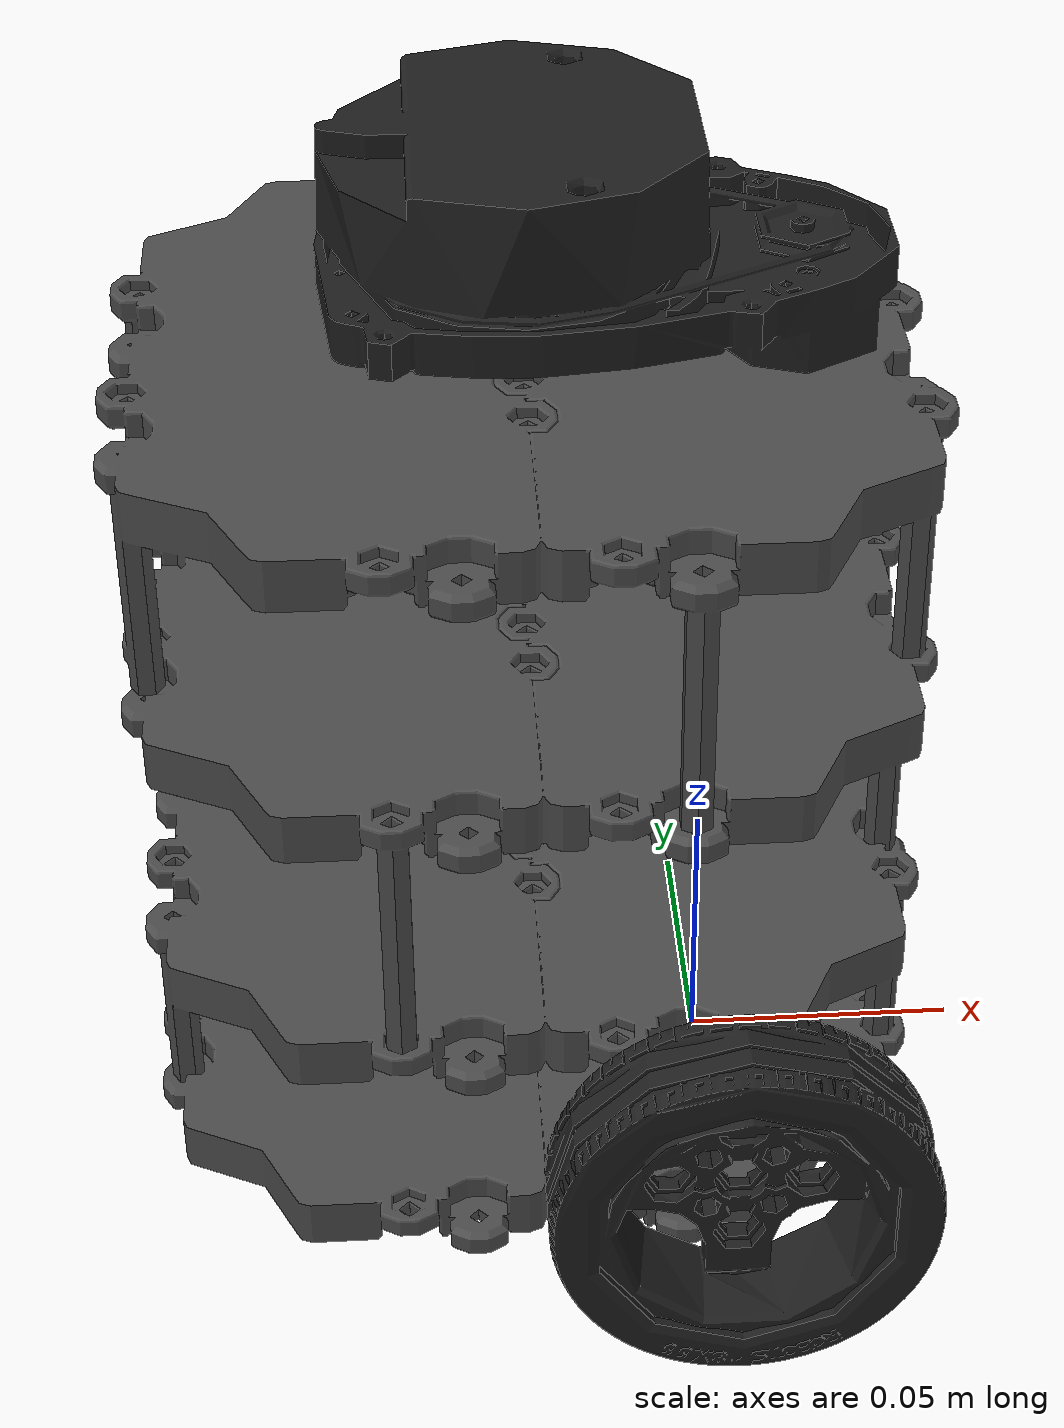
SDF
<?xml version="1.0"?>
<sdf version='1.4'>
  <model name='burger'>
    <link name='base_footprint'>
      <inertial>
        <pose>-0.00429 0 0.030734 0 -0 0</pose>
        <mass>0.944735</mass>
        <inertia>
          <ixx>0.00717896</ixx>
          <ixy>-1.22941e-05</ixy>
          <ixz>0.00057674</ixz>
          <iyy>0.00721804</iyy>
          <iyz>-5.01209e-06</iyz>
          <izz>0.00413858</izz>
        </inertia>
      </inertial>
      <collision name='base_footprint_fixed_joint_lump__base_link_collision'>
        <pose>-0.032 0 0.08 0 -0 0</pose>
        <geometry>
          <box>
            <size>0.14 0.14 0.143</size>
          </box>
        </geometry>
        <surface>
          <contact>
            <ode/>
          </contact>
          <friction>
            <ode/>
          </friction>
        </surface>
      </collision>
      <collision name='base_footprint_fixed_joint_lump__caster_back_link_collision_1'>
        <pose>-0.081 1e-06 0.005 -1.57 0 0</pose>
        <geometry>
          <box>
            <size>0.03 0.009 0.02</size>
          </box>
        </geometry>
        <surface>
          <contact>
            <ode>
              <kp>1e+06</kp>
              <kd>100</kd>
              <max_vel>1</max_vel>
              <min_depth>0.001</min_depth>
            </ode>
          </contact>
          <friction>
            <ode>
              <mu>0.1</mu>
              <mu2>0.1</mu2>
            </ode>
          </friction>
        </surface>
      </collision>
      <collision name='base_footprint_fixed_joint_lump__base_scan_collision_2'>
        <pose>-0.017 0 0.1755 0 -0 0</pose>
        <geometry>
          <cylinder>
            <length>0.0315</length>
            <radius>0.055</radius>
          </cylinder>
        </geometry>
        <surface>
          <contact>
            <ode/>
          </contact>
          <friction>
            <ode/>
          </friction>
        </surface>
      </collision>
      <visual name='base_footprint_fixed_joint_lump__base_link_visual'>
        <pose>-0.032 0 0.01 0 -0 0</pose>
        <geometry>
          <mesh>
            <scale>0.001 0.001 0.001</scale>
            <uri>model://self_meshes/bases/burger_base.dae</uri>
          </mesh>
        </geometry>
        <material>
          <script>
            <name>Gazebo/DarkGrey</name>
            <uri>file://media/materials/scripts/gazebo.material</uri>
          </script>
        </material>
      </visual>
      <visual name='base_footprint_fixed_joint_lump__base_scan_visual_1'>
        <pose>-0.032 0 0.182 0 -0 0</pose>
        <geometry>
          <mesh>
            <scale>0.001 0.001 0.001</scale>
            <uri>model://self_meshes/sensors/lds.dae</uri>
          </mesh>
        </geometry>
        <material>
          <script>
            <name>Gazebo/FlatBlack</name>
            <uri>file://media/materials/scripts/gazebo.material</uri>
          </script>
        </material>
      </visual>
      <sensor name='imu' type='imu'>
        <always_on>1</always_on>
        <visualize>0</visualize>
        <pose>-0.032 0 0.078 0 -0 0</pose>
      </sensor>
      <sensor name='lds_lfcd_sensor' type='ray'>
        <visualize>0</visualize>
        <update_rate>5</update_rate>
        <ray>
          <scan>
            <horizontal>
              <samples>360</samples>
              <resolution>1</resolution>
              <min_angle>0</min_angle>
              <max_angle>6.28319</max_angle>
            </horizontal>
          </scan>
          <range>
            <min>0.12</min>
            <max>20</max>
            <resolution>0.015</resolution>
          </range>
          <noise>
            <type>gaussian</type>
            <mean>0</mean>
            <stddev>0.01</stddev>
          </noise>
        </ray>
        <plugin name='gazebo_ros_lds_lfcd_controller' filename='libgazebo_ros_laser.so'>
          <topicName>scan</topicName>
          <frameName>base_scan</frameName>
        </plugin>
        <pose>-0.032 0 0.182 0 -0 0</pose>
      </sensor>
    </link>
    <joint name='wheel_left_joint' type='revolute'>
      <pose relative_to='base_footprint'>0 0.08 0.033 -1.57 0 0</pose>
      <parent>base_footprint</parent>
      <child>wheel_left_link</child>
      <axis>
        <xyz>0 1 0</xyz>
        <limit>
          <lower>-1e+16</lower>
          <upper>1e+16</upper>
        </limit>
        <dynamics>
          <spring_reference>0</spring_reference>
          <spring_stiffness>0</spring_stiffness>
        </dynamics>
      </axis>
    </joint>
    <link name='wheel_left_link'>
      <pose relative_to='wheel_left_joint'>0 0 0 0 -0 0</pose>
      <inertial>
        <pose>0 0 0 0 -0 0</pose>
        <mass>0.0284989</mass>
        <inertia>
          <ixx>1.11756e-05</ixx>
          <ixy>-4.23698e-11</ixy>
          <ixz>-5.93817e-09</ixz>
          <iyy>1.11924e-05</iyy>
          <iyz>-1.44001e-11</iyz>
          <izz>2.07126e-05</izz>
        </inertia>
      </inertial>
      <collision name='wheel_left_link_collision'>
        <pose>0 0 0 0 -0 0</pose>
        <geometry>
          <cylinder>
            <length>0.018</length>
            <radius>0.033</radius>
          </cylinder>
        </geometry>
        <surface>
          <contact>
            <ode>
              <kp>500000</kp>
              <kd>10</kd>
              <max_vel>0.1</max_vel>
              <min_depth>0.001</min_depth>
            </ode>
          </contact>
          <friction>
            <ode>
              <mu>0.1</mu>
              <mu2>0.1</mu2>
              <fdir1>1 0 0</fdir1>
            </ode>
          </friction>
        </surface>
      </collision>
      <visual name='wheel_left_link_visual'>
        <pose>0 0 0 1.57 -0 0</pose>
        <geometry>
          <mesh>
            <scale>0.001 0.001 0.001</scale>
            <uri>model://self_meshes/wheels/left_tire.dae</uri>
          </mesh>
        </geometry>
        <material>
          <script>
            <name>Gazebo/FlatBlack</name>
            <uri>file://media/materials/scripts/gazebo.material</uri>
          </script>
        </material>
      </visual>
    </link>
    <joint name='wheel_right_joint' type='revolute'>
      <pose relative_to='base_footprint'>0 -0.08 0.033 -1.57 0 0</pose>
      <parent>base_footprint</parent>
      <child>wheel_right_link</child>
      <axis>
        <xyz>0 1 0</xyz>
        <limit>
          <lower>-1e+16</lower>
          <upper>1e+16</upper>
        </limit>
        <dynamics>
          <spring_reference>0</spring_reference>
          <spring_stiffness>0</spring_stiffness>
        </dynamics>
      </axis>
    </joint>
    <link name='wheel_right_link'>
      <pose relative_to='wheel_right_joint'>0 0 0 0 -0 0</pose>
      <inertial>
        <pose>0 0 0 0 -0 0</pose>
        <mass>0.0284989</mass>
        <inertia>
          <ixx>1.11756e-05</ixx>
          <ixy>-4.23698e-11</ixy>
          <ixz>-5.93817e-09</ixz>
          <iyy>1.11924e-05</iyy>
          <iyz>-1.44001e-11</iyz>
          <izz>2.07126e-05</izz>
        </inertia>
      </inertial>
      <collision name='wheel_right_link_collision'>
        <pose>0 0 0 0 -0 0</pose>
        <geometry>
          <cylinder>
            <length>0.018</length>
            <radius>0.033</radius>
          </cylinder>
        </geometry>
        <surface>
          <contact>
            <ode>
              <kp>500000</kp>
              <kd>10</kd>
              <max_vel>0.1</max_vel>
              <min_depth>0.001</min_depth>
            </ode>
          </contact>
          <friction>
            <ode>
              <mu>0.1</mu>
              <mu2>0.1</mu2>
              <fdir1>1 0 0</fdir1>
            </ode>
          </friction>
        </surface>
      </collision>
      <visual name='wheel_right_link_visual'>
        <pose>0 0 0 1.57 -0 0</pose>
        <geometry>
          <mesh>
            <scale>0.001 0.001 0.001</scale>
            <uri>model://self_meshes/wheels/right_tire.dae</uri>
          </mesh>
        </geometry>
        <material>
          <script>
            <name>Gazebo/FlatBlack</name>
            <uri>file://media/materials/scripts/gazebo.material</uri>
          </script>
        </material>
      </visual>
    </link>
    <plugin name='turtlebot3_burger_controller' filename='libgazebo_ros_diff_drive.so'>
      <commandTopic>cmd_vel</commandTopic>
      <odometryTopic>odom</odometryTopic>
      <odometryFrame>odom</odometryFrame>
      <odometrySource>world</odometrySource>
      <publishOdomTF>1</publishOdomTF>
      <robotBaseFrame>base_footprint</robotBaseFrame>
      <publishWheelTF>0</publishWheelTF>
      <publishTf>1</publishTf>
      <publishWheelJointState>1</publishWheelJointState>
      <legacyMode>0</legacyMode>
      <updateRate>30</updateRate>
      <leftJoint>wheel_left_joint</leftJoint>
      <rightJoint>wheel_right_joint</rightJoint>
      <wheelSeparation>0.160</wheelSeparation>
      <wheelDiameter>0.066</wheelDiameter>
      <wheelAcceleration>1</wheelAcceleration>
      <wheelTorque>30</wheelTorque>
      <rosDebugLevel>na</rosDebugLevel>
    </plugin>
    <static>0</static>
    <plugin name='imu_plugin' filename='libgazebo_ros_imu.so'>
      <alwaysOn>1</alwaysOn>
      <topicName>imu</topicName>
      <serviceName>imu_service</serviceName>
      <gaussianNoise>0.0</gaussianNoise>
      <updateRate>0</updateRate>
      <imu>
        <noise>
          <type>gaussian</type>
          <rate>
            <mean>0.0</mean>
            <stddev>2e-4</stddev>
            <bias_mean>0.0000075</bias_mean>
            <bias_stddev>0.0000008</bias_stddev>
          </rate>
          <accel>
            <mean>0.0</mean>
            <stddev>1.7e-2</stddev>
            <bias_mean>0.1</bias_mean>
            <bias_stddev>0.001</bias_stddev>
          </accel>
        </noise>
      </imu>
      <bodyName>base_footprint</bodyName>
      <frameName>base_footprint</frameName>
      <xyzOffset>0.064 0 -0.156</xyzOffset>
      <rpyOffset>0 -0 0</rpyOffset>
    </plugin>
  </model>
</sdf>
